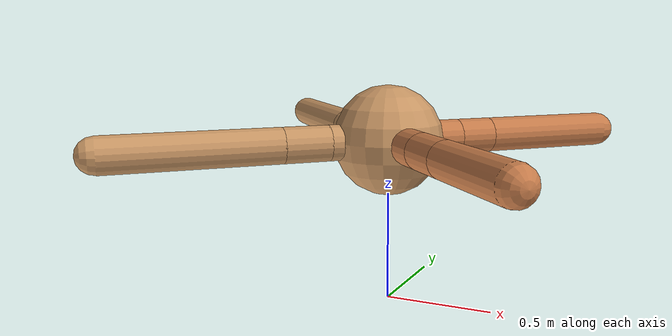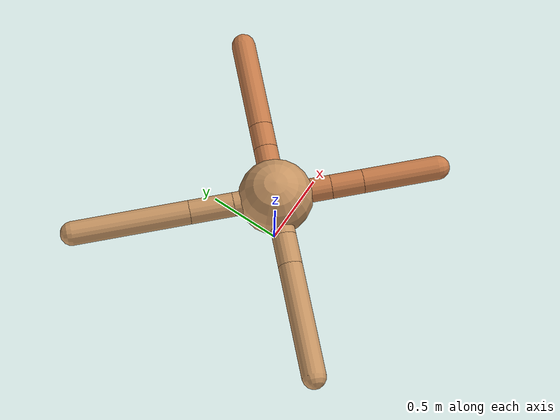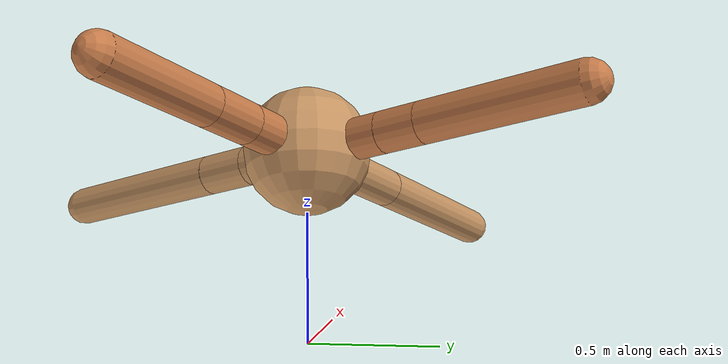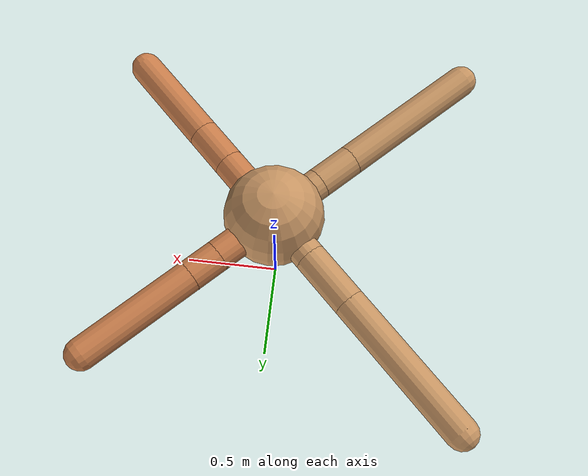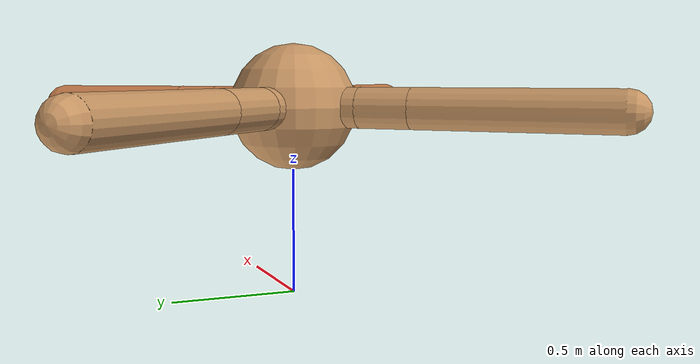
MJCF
<mujoco model="ant">
  <compiler angle="degree" coordinate="local" inertiafromgeom="true" />
  <option integrator="RK4" timestep="0.01" />
  <custom>
    <numeric data="0.0 0.0 0.55 1.0 0.0 0.0 0.0 0.0 1.0 0.0 -1.0 0.0 -1.0 0.0 1.0" name="init_qpos" />
  </custom>
  <default>
    <joint armature="1" damping="1" limited="true" />
    <geom conaffinity="0" condim="3" density="5.0" friction="1.5 0.1 0.1" margin="0.01" rgba="0.8 0.6 0.4 1" />
  </default>
  <worldbody>
    <body name="torso" pos="0 0 0.75">
      <geom name="torso_geom" pos="0 0 0" size="0.25" type="sphere" />

      <body name="front_left_leg" pos="0 0 0">
        <geom fromto="0.0 0.0 0.0 0.2449703260867635 0.2449703260867635 0.0" name="aux_1_geom" size="0.08" type="capsule" rgba=".8 .5 .3 1" />
        <body name="aux_1" pos="0.2449703260867635 0.2449703260867635 0.0">
          <joint axis="0 0 1" name="hip_1" pos="0.0 0.0 0.0" range="-40 40" type="hinge" />
          <geom fromto="0.0 0.0 0.0 0.11688360079702637 0.11688360079702637 0.0" name="left_leg_geom" size="0.08" type="capsule" rgba=".8 .5 .3 1" />
          <body pos="0.11688360079702637 0.11688360079702637 0.0" name="front_left_foot">
            <joint axis="-1 1 0" name="ankle_1" pos="0.0 0.0 0.0" range="30 100" type="hinge" />
            <geom fromto="0.0 0.0 0.0 0.43679701021288536 0.43679701021288536 0.0" name="left_ankle_geom" size="0.08" type="capsule" rgba=".8 .5 .3 1" />
          </body>
        </body>
      </body>
      <body name="front_right_leg" pos="0 0 0">
        <geom fromto="0.0 0.0 0.0 -0.2 0.2 0.0" name="aux_2_geom" size="0.08" type="capsule" />
        <body name="aux_2" pos="-0.2 0.2 0.0">
          <joint axis="0 0 1" name="hip_2" pos="0.0 0.0 0.0" range="-40 40" type="hinge" />
          <geom fromto="0.0 0.0 0.0 -0.20678964793670476 0.20678964793670476 0.0" name="right_leg_geom" size="0.08" type="capsule" />
          <body pos="-0.20678964793670476 0.20678964793670476 0.0" name="front_right_foot">
            <joint axis="1 1 0" name="ankle_2" pos="0.0 0.0 0.0" range="-100 -30" type="hinge" />
            <geom fromto="0.0 0.0 0.0 -0.5509406696588534 0.5509406696588534 0.0" name="right_ankle_geom" size="0.08" type="capsule" />
          </body>
        </body>
      </body>
      <body name="left_back_leg" pos="0 0 0">
        <geom fromto="0.0 0.0 0.0 -0.2 -0.2 0.0" name="aux_3_geom" size="0.08" type="capsule" />
        <body name="aux_3" pos="-0.2 -0.2 0.0">
          <joint axis="0 0 1" name="hip_3" pos="0.0 0.0 0.0" range="-40 40" type="hinge" />
          <geom fromto="0.0 0.0 0.0 -0.1461066090994876 -0.1461066090994876 0.0" name="back_leg_geom" size="0.08" type="capsule" />
          <body pos="-0.1461066090994876 -0.1461066090994876 0.0" name="left_back_foot">
            <joint axis="-1 1 0" name="ankle_3" pos="0.0 0.0 0.0" range="-100 -30" type="hinge" />
            <geom fromto="0.0 0.0 0.0 -0.5370962101765514 -0.5370962101765514 0.0" name="third_ankle_geom" size="0.08" type="capsule" />
          </body>
        </body>
      </body>
      <body name="right_back_leg" pos="0 0 0">
        <geom fromto="0.0 0.0 0.0 0.26128355284767574 -0.26128355284767574 0.0" name="aux_4_geom" size="0.08" type="capsule" rgba=".8 .5 .3 1" />
        <body name="aux_4" pos="0.26128355284767574 -0.26128355284767574 0.0">
          <joint axis="0 0 1" name="hip_4" pos="0.0 0.0 0.0" range="-40 40" type="hinge" />
          <geom fromto="0.0 0.0 0.0 0.1520530226524346 -0.1520530226524346 0.0" name="rightback_leg_geom" size="0.08" type="capsule" rgba=".8 .5 .3 1" />
          <body pos="0.1520530226524346 -0.1520530226524346 0.0" name="right_back_foot">
            <joint axis="1 1 0" name="ankle_4" pos="0.0 0.0 0.0" range="30 100" type="hinge" />
            <geom fromto="0.0 0.0 0.0 0.35998829597320586 -0.35998829597320586 0.0" name="fourth_ankle_geom" size="0.08" type="capsule" rgba=".8 .5 .3 1" />
          </body>
        </body>
      </body>
    </body>
  </worldbody>
  <actuator>
    <motor ctrllimited="true" ctrlrange="-1.0 1.0" joint="hip_4" gear="150" />
    <motor ctrllimited="true" ctrlrange="-1.0 1.0" joint="ankle_4" gear="150" />
    <motor ctrllimited="true" ctrlrange="-1.0 1.0" joint="hip_1" gear="150" />
    <motor ctrllimited="true" ctrlrange="-1.0 1.0" joint="ankle_1" gear="150" />
    <motor ctrllimited="true" ctrlrange="-1.0 1.0" joint="hip_2" gear="150" />
    <motor ctrllimited="true" ctrlrange="-1.0 1.0" joint="ankle_2" gear="150" />
    <motor ctrllimited="true" ctrlrange="-1.0 1.0" joint="hip_3" gear="150" />
    <motor ctrllimited="true" ctrlrange="-1.0 1.0" joint="ankle_3" gear="150" />
  </actuator>
</mujoco>
